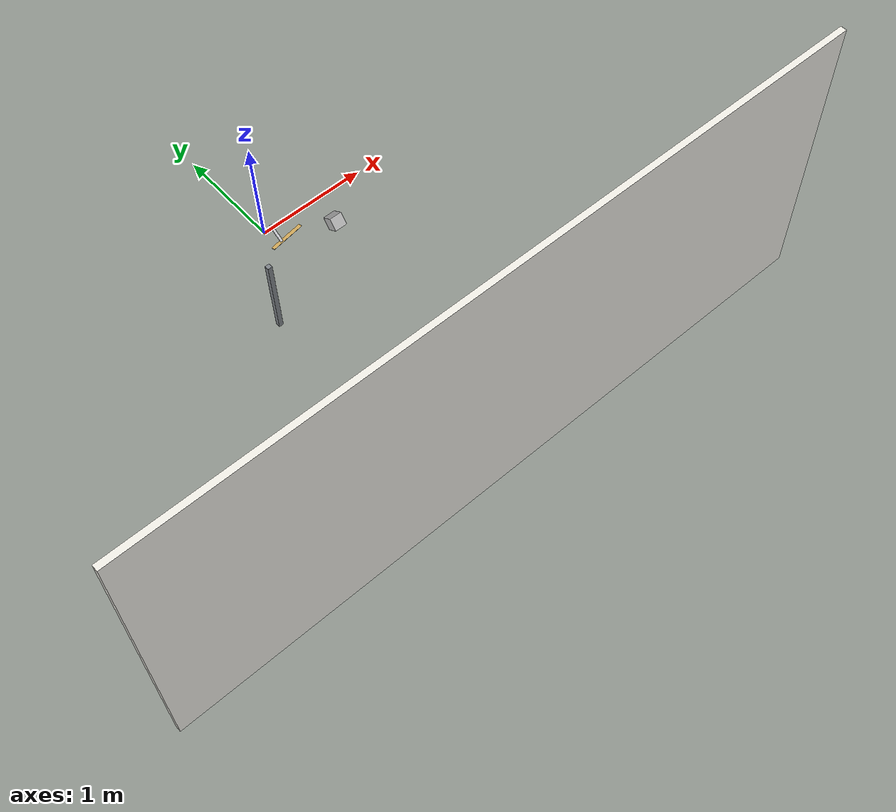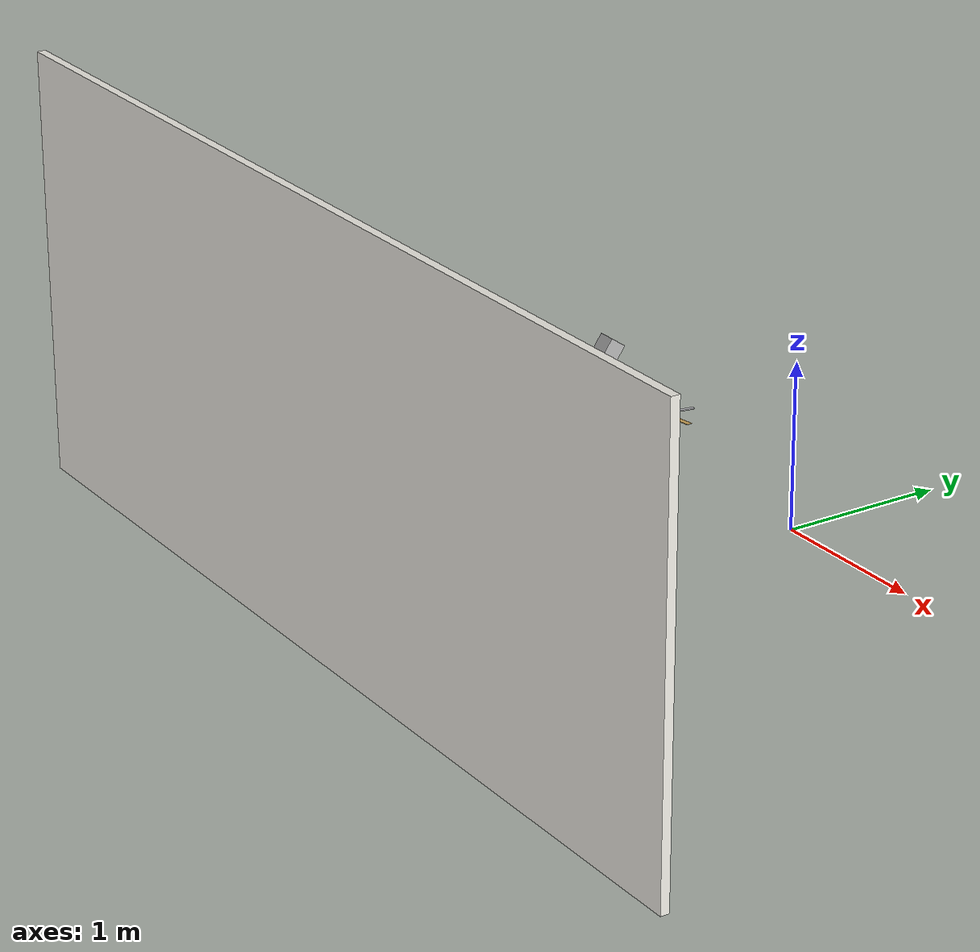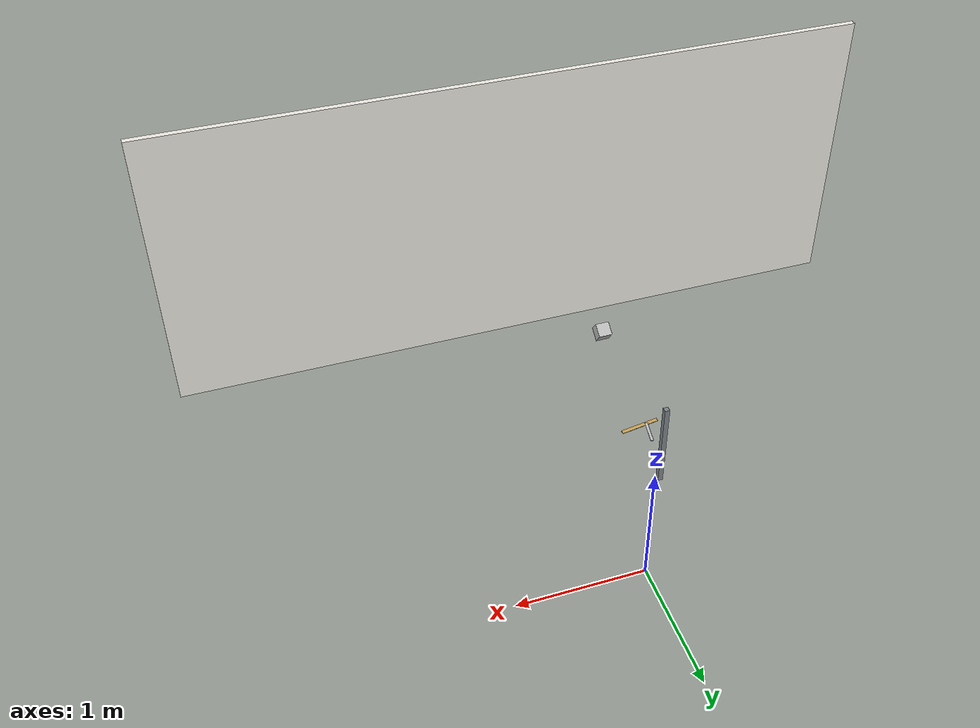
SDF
<sdf version="1.10">
 <world name="bps_room">
  <model name="wall_south">
   <static>true</static>
   <pose>0 -3 1.25 0 0 0</pose>
   <link name="link">
    <collision name="collision">
     <geometry><box><size>6 0.050000000000000003 2.5</size></box></geometry>
    </collision>
    <visual name="visual">
     <geometry><box><size>6 0.050000000000000003 2.5</size></box></geometry>
     <material>
      <ambient>0.949999988 0.939999998 0.910000026 1</ambient>
      <diffuse>0.949999988 0.939999998 0.910000026 1</diffuse>
     </material>
    </visual>
    <inertial>
     <mass>1</mass>
     <inertia><ixx>1</ixx><ixy>0</ixy><ixz>0</ixz><iyy>1</iyy><iyz>0</iyz><izz>1</izz></inertia>
    </inertial>
   </link>
  </model>
  <model name="table_leg_fl">
   <static>true</static>
   <pose>-0.46999999999999997 -0.81999999999999995 0.375 0 0 0</pose>
   <link name="link">
    <collision name="collision">
     <geometry><box><size>0.040000000000000001 0.040000000000000001 0.75</size></box></geometry>
    </collision>
    <visual name="visual">
     <geometry><box><size>0.040000000000000001 0.040000000000000001 0.75</size></box></geometry>
     <material>
      <ambient>0.5 0.519999981 0.540000021 1</ambient>
      <diffuse>0.5 0.519999981 0.540000021 1</diffuse>
     </material>
    </visual>
    <inertial>
     <mass>1</mass>
     <inertia><ixx>1</ixx><ixy>0</ixy><ixz>0</ixz><iyy>1</iyy><iyz>0</iyz><izz>1</izz></inertia>
    </inertial>
   </link>
  </model>
  <model name="obj_fork">
   <static>false</static>
   <pose>-0.23999999999999999 -0.62 0.77249999999999996 0 0 1.3999999999999997</pose>
   <link name="link">
    <collision name="collision">
     <geometry><box><size>0.19 0.021999999999999999 0.0050000000000000001</size></box></geometry>
    </collision>
    <visual name="visual">
     <geometry><box><size>0.19 0.021999999999999999 0.0050000000000000001</size></box></geometry>
     <material>
      <ambient>0.779999971 0.779999971 0.800000012 1</ambient>
      <diffuse>0.779999971 0.779999971 0.800000012 1</diffuse>
      <specular>0.600000024 0.600000024 0.600000024 1</specular>
     </material>
     <plugin name="gz::sim::systems::Label" filename="gz-sim-label-system"><label>2</label></plugin>
    </visual>
    <inertial>
     <mass>1</mass>
     <inertia><ixx>1</ixx><ixy>0</ixy><ixz>0</ixz><iyy>1</iyy><iyz>0</iyz><izz>1</izz></inertia>
    </inertial>
    <sensor name="obj_fork_contact_sensor" type="contact">
     <contact><collision>collision</collision></contact>
     <update_rate>30</update_rate>
     <always_on>true</always_on>
    </sensor>
   </link>
  </model>
  <model name="obj_ruler">
   <static>false</static>
   <pose>-0.20000000000000001 -0.69999999999999996 0.77149999999999996 0 0 0.14999999999999988</pose>
   <link name="link">
    <collision name="collision">
     <geometry><box><size>0.29999999999999999 0.029999999999999999 0.0030000000000000001</size></box></geometry>
    </collision>
    <visual name="visual">
     <geometry><box><size>0.29999999999999999 0.029999999999999999 0.0030000000000000001</size></box></geometry>
     <material>
      <ambient>0.819999993 0.660000026 0.349999994 1</ambient>
      <diffuse>0.819999993 0.660000026 0.349999994 1</diffuse>
      <specular>0.200000003 0.200000003 0.200000003 1</specular>
     </material>
     <plugin name="gz::sim::systems::Label" filename="gz-sim-label-system"><label>11</label></plugin>
    </visual>
    <inertial>
     <mass>1</mass>
     <inertia><ixx>1</ixx><ixy>0</ixy><ixz>0</ixz><iyy>1</iyy><iyz>0</iyz><izz>1</izz></inertia>
    </inertial>
    <sensor name="obj_ruler_contact_sensor" type="contact">
     <contact><collision>collision</collision></contact>
     <update_rate>30</update_rate>
     <always_on>true</always_on>
    </sensor>
   </link>
  </model>
  <model name="depth_camera_v5">
   <static>true</static>
   <pose>-0.02474666666666682 -1.2701987109556585 1.305276436351046 -0.0 0.6108652381980153 1.5707963267948963</pose>
   <link name="link">
    <pose>0.050000000000000003 0.050000000000000003 0.050000000000000003 0 0 0</pose>
    <inertial>
     <mass>0.10000000000000001</mass>
     <inertia>
      <ixx>0.00016666700000000001</ixx>
      <iyy>0.00016666700000000001</iyy>
      <izz>0.00016666700000000001</izz>
      <ixy>0</ixy>
      <ixz>0</ixz>
      <iyz>0</iyz>
     </inertia>
    </inertial>
    <collision name="collision">
     <geometry><box><size>0.10000000000000001 0.10000000000000001 0.10000000000000001</size></box></geometry>
    </collision>
    <visual name="visual">
     <geometry><box><size>0.10000000000000001 0.10000000000000001 0.10000000000000001</size></box></geometry>
    </visual>
    <sensor name="depth_camera5" type="depth_camera">
     <topic>depth_camera_v5</topic>
     <update_rate>10</update_rate>
     <enable_metrics>false</enable_metrics>
     <camera>
      <horizontal_fov>1.2</horizontal_fov>
      <image>
       <width>640</width>
       <height>480</height>
       <format>R_FLOAT32</format>
       <anti_aliasing>4</anti_aliasing>
      </image>
      <camera_info_topic>__default__</camera_info_topic>
      <triggered>false</triggered>
      <clip><near>0.10000000000000001</near><far>2</far></clip>
      <save enabled="false"><path>__default__</path></save>
      <visibility_mask>4294967295</visibility_mask>
      <noise><type>none</type><mean>0</mean><stddev>0</stddev></noise>
      <distortion><k1>0</k1><k2>0</k2><k3>0</k3><p1>0</p1><p2>0</p2><center>0.5 0.5</center></distortion>
      <lens>
       <type>stereographic</type>
       <scale_to_hfov>true</scale_to_hfov>
       <cutoff_angle>1.5707963267948966</cutoff_angle>
       <env_texture_size>256</env_texture_size>
      </lens>
     </camera>
    </sensor>
    <sensor name="rgb_camera5" type="camera">
     <topic>rgb_camera_v5</topic>
     <update_rate>10</update_rate>
     <enable_metrics>false</enable_metrics>
     <camera>
      <horizontal_fov>1.2</horizontal_fov>
      <image><width>640</width><height>480</height><format>RGB_INT8</format><anti_aliasing>4</anti_aliasing></image>
      <camera_info_topic>__default__</camera_info_topic>
      <triggered>false</triggered>
      <clip><near>0.10000000000000001</near><far>2</far></clip>
      <save enabled="false"><path>__default__</path></save>
      <visibility_mask>4294967295</visibility_mask>
      <noise><type>none</type><mean>0</mean><stddev>0</stddev></noise>
      <distortion><k1>0</k1><k2>0</k2><k3>0</k3><p1>0</p1><p2>0</p2><center>0.5 0.5</center></distortion>
      <lens>
       <type>stereographic</type>
       <scale_to_hfov>true</scale_to_hfov>
       <cutoff_angle>1.5707963267948966</cutoff_angle>
       <env_texture_size>256</env_texture_size>
      </lens>
     </camera>
    </sensor>
    <sensor name="semantic_camera5" type="segmentation_camera">
     <topic>semantic_camera_v5</topic>
     <update_rate>10</update_rate>
     <enable_metrics>false</enable_metrics>
     <camera>
      <horizontal_fov>1.2</horizontal_fov>
      <image><width>640</width><height>480</height></image>
      <clip><near>0.1</near><far>100</far></clip>
      <segmentation_type>semantic</segmentation_type>
     </camera>
    </sensor>
   </link>
  </model>
 </world>
</sdf>
